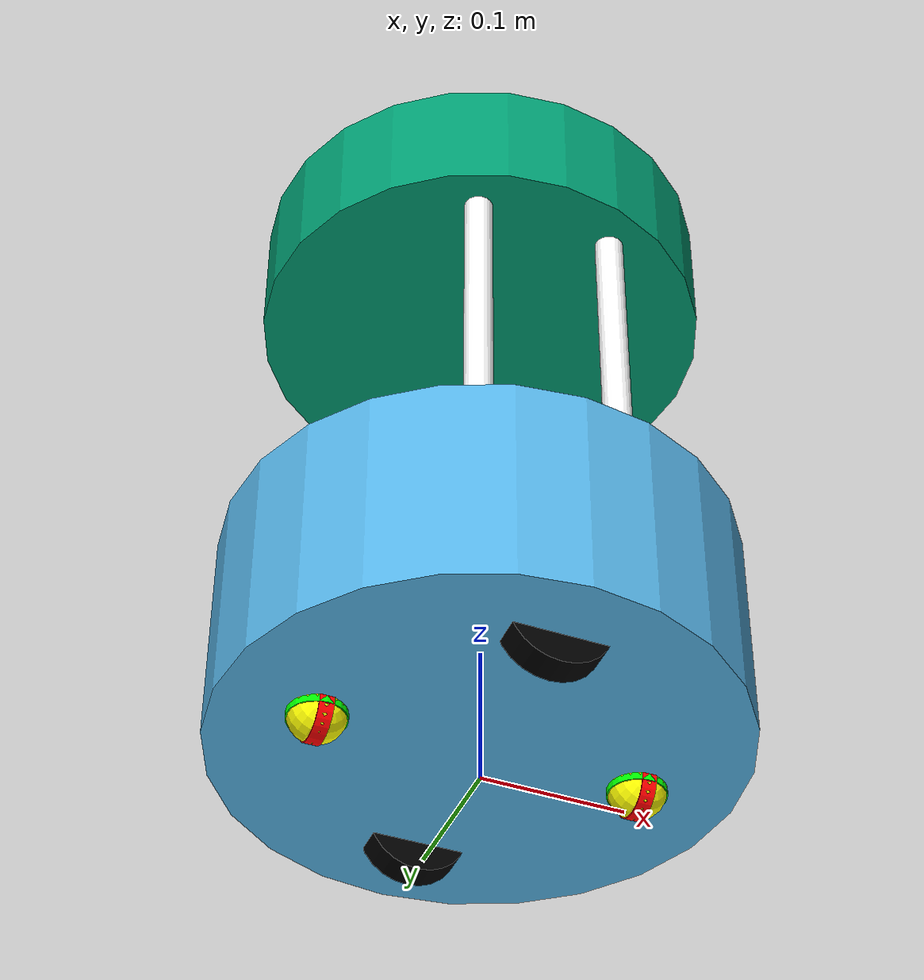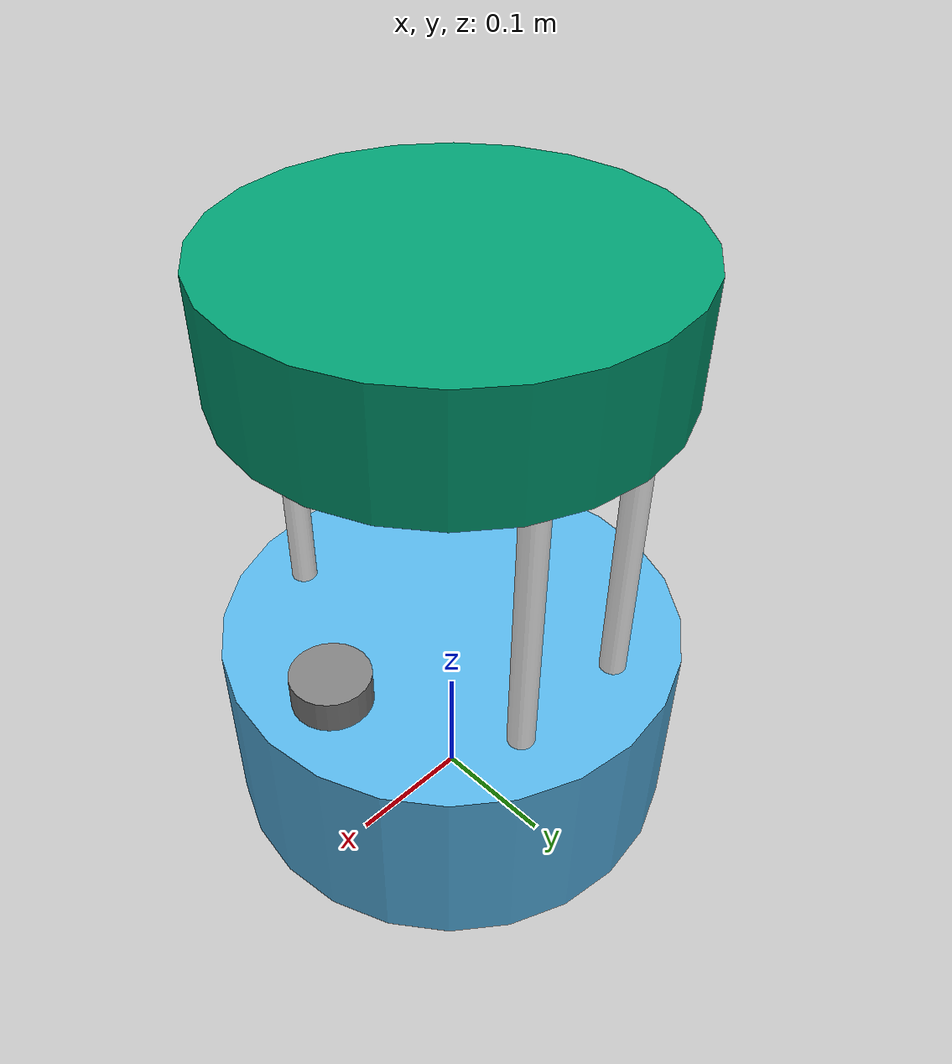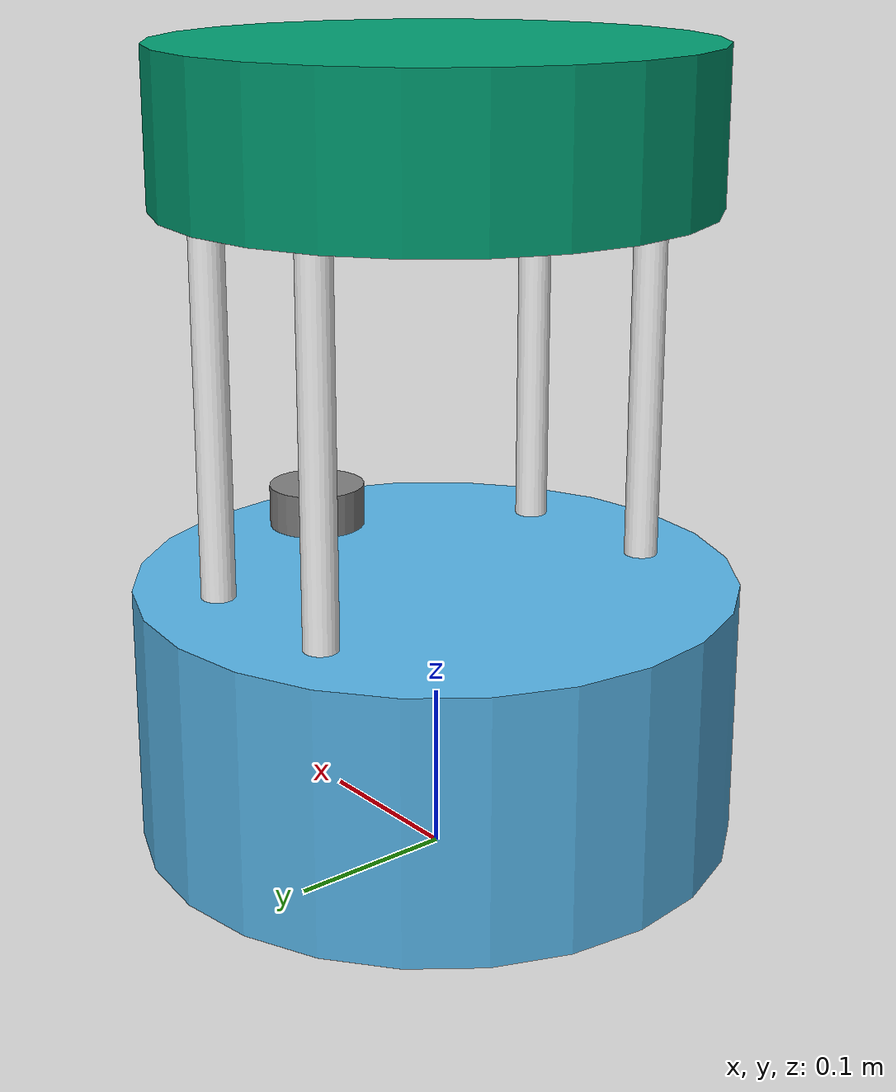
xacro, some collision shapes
<?xml version="1.0"?>
<robot xmlns:xacro="http://www.ros.org/wiki/xacro" name="barista_robot">

  <!-- Argument -->
  <xacro:arg name="robot_name" default=""/>
  <xacro:arg name="color" default=""/>
  <xacro:arg name="include_laser" default="true"/>
  <xacro:arg name="plugin_ns" default=""/>

  <!-- Property -->
  <xacro:property name="include_laser" value="$(arg include_laser)"/>
  <xacro:property name="robot_name" value="$(arg robot_name)"/>
  <xacro:property name="color" value="$(arg color)"/>

  <!-- Included tags -->
  <xacro:include filename="$(find barista_robot_description)/xacro/cup_holder_tray.xacro"/>
  <xacro:include filename="$(find barista_robot_description)/xacro/standoff.xacro"/>
  <xacro:include filename="$(find barista_robot_description)/xacro/wheel.xacro"/>
  <xacro:include filename="$(find barista_robot_description)/xacro/laser_scanner.xacro"/>

  <!-- Global Material Definitions -->
  <material name="Red">
    <color rgba="1.0 0.0 0.0 1.0"/>
  </material>

  <material name="Blue">
    <color rgba="0.0 0.0 1.0 1.0"/>
  </material>

  <material name="Black">
    <color rgba="0.0 0.0 0.0 1.0"/>
  </material>

  <material name="Green">
    <color rgba="0.0 1.0 0.0 1.0"/>
  </material>

  <material name="LightNavyBlue">
    <color rgba="0.2 0.2 0.7 1.0"/>
  </material>

  <material name="Gray">
    <color rgba="0.5 0.5 0.5 1.0"/>
  </material>

  <material name="White">
    <color rgba="1.0 1.0 1.0 1.0"/>
  </material>

  <material name="Purple">
    <color rgba="0.5 0.0 0.5 1.0"/>
  </material>

  <material name="Yellow">
    <color rgba="1.0 1.0 0.0 1.0"/>
  </material>

  <!-- Properties -->
  <xacro:property name="body_radius" value="0.178"/>
  <xacro:property name="body_length" value="0.155"/>
  <xacro:property name="cup_holder_tray_radius" value="0.16"/>
  <xacro:property name="cup_holder_tray_length" value="0.09"/>
  <xacro:property name="standoff_rods_radius" value="0.01"/>
  <xacro:property name="standoff_rods_length" value="0.22"/>
  <xacro:property name="wheel_radius" value="0.0352"/>
  <xacro:property name="wheel_length" value="0.0206"/>
  <xacro:property name="caster_wheel_radius" value="0.02"/>
  <xacro:property name="caster_wheel_length" value="0.01"/>
  <xacro:property name="cylinder_laser_scan_length" value="0.048"/>
  <xacro:property name="cylinder_laser_scan_radius" value="0.03"/>

  <!-- Define base link -->
  <link name="base_link">
  </link>

  <!-- Robot Body -->
  <!-- Chassis Link -->
  <link name="chassis">
    <visual>
      <geometry>
        <cylinder length="${body_length}" radius="${body_radius}"/>
      </geometry>
      <material name="$(arg color)"/>
    </visual>
    <collision>
      <geometry>
        <cylinder length="${body_length}" radius="${body_radius}"/>
      </geometry>
    </collision>
    <inertial>
      <mass value="0.5"/>
      <origin xyz="0 0 0"/>
      <inertia ixx="0.004961541666666666" ixy="0.0" ixz="0.0" iyy="0.004961541666666666" iyz="0.0" izz="0.007921"/>
    </inertial>
  </link>

  <!-- Joint to Attach to Parent -->
  <joint name="chassis_joint" type="fixed">
    <origin rpy="0 0 0" xyz="0 0 0.0975"/>
    <parent link="base_link"/>
    <child link="chassis"/>
  </joint>

  <gazebo reference="chassis">
    <material>Gazebo/$(arg color)</material>
  </gazebo>

  <!-- Cup Holder Tray -->
  <xacro:cup_holder_tray
    name="cup_holder_tray"
    radius="${cup_holder_tray_radius}"
    length="${cup_holder_tray_length}"
    material="$(arg color)"
    mass="0.2"
    parent_link="chassis"
    xyz="0 0 0.3425"
    rpy="0 0 0"
    joint_type="fixed"
    axis="0 0 0"/>

  <gazebo reference="cup_holder_tray">
    <material>Gazebo/$(arg color)</material>
  </gazebo>

  <!-- Standoff Rods -->
  <xacro:standoff
    name="standoff_rod_1"
    radius="${standoff_rods_radius}"
    length="${standoff_rods_length}"
    material="White"
    mass="0.07"
    parent_link="chassis"
    xyz="0.05 0.12 0.1875"
    rpy="0 0 0"
    joint_type="fixed"
    axis="0 0 0"/>

  <xacro:standoff
    name="standoff_rod_2"
    radius="${standoff_rods_radius}"
    length="${standoff_rods_length}"
    material="White"
    mass="0.07"
    parent_link="chassis"
    xyz="-0.05 0.12 0.1875"
    rpy="0 0 0"
    joint_type="fixed"
    axis="0 0 0"/>

  <xacro:standoff
    name="standoff_rod_3"
    radius="${standoff_rods_radius}"
    length="${standoff_rods_length}"
    material="White"
    mass="0.07"
    parent_link="chassis"
    xyz="0.05 -0.12 0.1875"
    rpy="0 0 0"
    joint_type="fixed"
    axis="0 0 0"/>

  <xacro:standoff
    name="standoff_rod_4"
    radius="${standoff_rods_radius}"
    length="${standoff_rods_length}"
    material="White"
    mass="0.07"
    parent_link="chassis"
    xyz="-0.05 -0.12 0.1875"
    rpy="0 0 0"
    joint_type="fixed"
    axis="0 0 0"/>

  <gazebo reference="standoff_rod_1">
    <material>Gazebo/White</material>
  </gazebo>

  <gazebo reference="standoff_rod_2">
    <material>Gazebo/White</material>
  </gazebo>

  <gazebo reference="standoff_rod_3">
    <material>Gazebo/White</material>
  </gazebo>

  <gazebo reference="standoff_rod_4">
    <material>Gazebo/White</material>
  </gazebo>

  <!-- Wheels -->
  <xacro:wheel
    name="wheel_right"
    radius="${wheel_radius}"
    length="${wheel_length}"
    material="Black"
    mass="0.1"
    parent_link="chassis"
    xyz="0 -0.12 -0.0630"
    rpy="0 1.5708 1.5708"
    joint_type="continuous"
    axis="0 0 1"/>

  <xacro:wheel
    name="wheel_left"
    radius="${wheel_radius}"
    length="${wheel_length}"
    material="Black"
    mass="0.1"
    parent_link="chassis"
    xyz="0 0.12 -0.0630"
    rpy="0 1.5708 1.5708"
    joint_type="continuous"
    axis="0 0 1"/>

  <!-- Gazebo configuration for Wheels -->
  <gazebo reference="wheel_right">
    <kp>1000000000.0</kp>
    <kd>1000000000.0</kd>
    <mu1>0.8</mu1>
    <mu2>0.8</mu2>
    <material>Gazebo/Black</material>
  </gazebo>

  <gazebo reference="wheel_left">
    <kp>1000000000.0</kp>
    <kd>1000000000.0</kd>
    <mu1>0.8</mu1>
    <mu2>0.8</mu2>
    <material>Gazebo/Black</material>
  </gazebo>
  <!-- Caster Wheel Link (Yaw) -->
  <link name="front_caster_wheel_yaw_link">
    <visual>
      <origin rpy="0 1.5707 1.5707" xyz="0 0 0"/>
      <geometry>
        <cylinder length="0.01" radius="0.02"/>
      </geometry>
      <material name="Red"/>
    </visual>
    <collision>
      <origin rpy="0 1.5707 1.5707" xyz="0 0 0"/>
      <geometry>
        <cylinder length="0.01" radius="0.02"/>
      </geometry>
    </collision>
    <inertial>
      <origin rpy="0 1.5707 1.5707" xyz="0 0 0"/>
      <mass value="0.07"/>
      <inertia ixx="7.583333333333334e-06" ixy="0.0" ixz="0.0" iyy="7.583333333333334e-06" iyz="0.0" izz="1.4000000000000001e-05"/>
    </inertial>
  </link>
  <!-- Yaw Joint -->
  <joint name="front_caster_wheel_yaw_joint" type="continuous">
    <origin rpy="0 1.5707 1.5707" xyz="0.11 0 -0.0775"/>
    <parent link="chassis"/>
    <child link="front_caster_wheel_yaw_link"/>
    <axis xyz="0 0 1"/>
    <limit effort="1000.0" velocity="100.0"/>
    <dynamics damping="0.0" friction="0.1"/>
  </joint>
  <!-- Caster Wheel (Roll) -->
  <link name="front_caster_wheel_roll_link">
    <visual>
      <origin rpy="0 1.5707 1.5707" xyz="0 0 0"/>
      <geometry>
        <cylinder length="0.01" radius="0.02"/>
      </geometry>
      <material name="Green"/>
    </visual>
    <collision>
      <origin rpy="0 1.5707 1.5707" xyz="0 0 0"/>
      <geometry>
        <cylinder length="0.01" radius="0.02"/>
      </geometry>
    </collision>
    <inertial>
      <origin rpy="0 1.5707 1.5707" xyz="0 0 0"/>
      <mass value="0.07"/>
      <inertia ixx="7.583333333333334e-06" ixy="0.0" ixz="0.0" iyy="7.583333333333334e-06" iyz="0.0" izz="1.4000000000000001e-05"/>
    </inertial>
  </link>
  <!-- Roll Joint -->
  <joint name="front_caster_wheel_roll_joint" type="continuous">
    <origin rpy="0 1.5707 1.5707" xyz="0 0 0"/>
    <parent link="front_caster_wheel_yaw_link"/>
    <child link="front_caster_wheel_roll_link"/>
    <axis xyz="1 0 0"/>
    <limit effort="1000.0" velocity="100.0"/>
    <dynamics damping="0.0" friction="0.1"/>
  </joint>
  <!-- Caster Wheel (Pitch) -->
  <link name="front_caster_wheel_pitch_link">
    <visual>
      <origin rpy="0 1.5707 1.5707" xyz="0 0 0"/>
      <geometry>
        <sphere radius="0.02"/>
      </geometry>
      <material name="Yellow"/>
    </visual>
    <collision>
      <origin rpy="0 1.5707 1.5707" xyz="0 0 0"/>
      <geometry>
        <sphere radius="0.02"/>
      </geometry>
    </collision>
    <inertial>
      <origin rpy="0 1.5707 1.5707" xyz="0 0 0"/>
      <mass value="0.07"/>
      <inertia ixx="1.1200000000000003e-05" ixy="0.0" ixz="0.0" iyy="1.1200000000000003e-05" iyz="0.0" izz="1.1200000000000003e-05"/>
    </inertial>
  </link>
  <!-- Pitch Joint -->
  <joint name="front_caster_wheel_pitch_joint" type="continuous">
    <origin rpy="0 1.5707 1.5707" xyz="0 0 0"/>
    <parent link="front_caster_wheel_roll_link"/>
    <child link="front_caster_wheel_pitch_link"/>
    <axis xyz="0 1 0"/>
    <limit effort="1000.0" velocity="100.0"/>
    <dynamics damping="0.0" friction="0.1"/>
  </joint>
  <!-- Caster Wheel Link (Yaw) -->
  <link name="back_caster_wheel_yaw_link">
    <visual>
      <origin rpy="0 1.5707 1.5707" xyz="0 0 0"/>
      <geometry>
        <cylinder length="0.01" radius="0.02"/>
      </geometry>
      <material name="Red"/>
    </visual>
    <collision>
      <origin rpy="0 1.5707 1.5707" xyz="0 0 0"/>
      <geometry>
        <cylinder length="0.01" radius="0.02"/>
      </geometry>
    </collision>
    <inertial>
      <origin rpy="0 1.5707 1.5707" xyz="0 0 0"/>
      <mass value="0.07"/>
      <inertia ixx="7.583333333333334e-06" ixy="0.0" ixz="0.0" iyy="7.583333333333334e-06" iyz="0.0" izz="1.4000000000000001e-05"/>
    </inertial>
  </link>
  <!-- Yaw Joint -->
  <joint name="back_caster_wheel_yaw_joint" type="continuous">
    <origin rpy="0 1.5707 1.5707" xyz="-0.11 0 -0.0775"/>
    <parent link="chassis"/>
    <child link="back_caster_wheel_yaw_link"/>
    <axis xyz="0 0 1"/>
    <limit effort="1000.0" velocity="100.0"/>
    <dynamics damping="0.0" friction="0.1"/>
  </joint>
  <!-- Caster Wheel (Roll) -->
  <link name="back_caster_wheel_roll_link">
    <visual>
      <origin rpy="0 1.5707 1.5707" xyz="0 0 0"/>
      <geometry>
        <cylinder length="0.01" radius="0.02"/>
      </geometry>
      <material name="Green"/>
    </visual>
    <collision>
      <origin rpy="0 1.5707 1.5707" xyz="0 0 0"/>
      <geometry>
        <cylinder length="0.01" radius="0.02"/>
      </geometry>
    </collision>
    <inertial>
      <origin rpy="0 1.5707 1.5707" xyz="0 0 0"/>
      <mass value="0.07"/>
      <inertia ixx="7.583333333333334e-06" ixy="0.0" ixz="0.0" iyy="7.583333333333334e-06" iyz="0.0" izz="1.4000000000000001e-05"/>
    </inertial>
  </link>
  <!-- Roll Joint -->
  <joint name="back_caster_wheel_roll_joint" type="continuous">
    <origin rpy="0 1.5707 1.5707" xyz="0 0 0"/>
    <parent link="back_caster_wheel_yaw_link"/>
    <child link="back_caster_wheel_roll_link"/>
    <axis xyz="1 0 0"/>
    <limit effort="1000.0" velocity="100.0"/>
    <dynamics damping="0.0" friction="0.1"/>
  </joint>
  <!-- Caster Wheel (Pitch) -->
  <link name="back_caster_wheel_pitch_link">
    <visual>
      <origin rpy="0 1.5707 1.5707" xyz="0 0 0"/>
      <geometry>
        <sphere radius="0.02"/>
      </geometry>
      <material name="Yellow"/>
    </visual>
    <collision>
      <origin rpy="0 1.5707 1.5707" xyz="0 0 0"/>
      <geometry>
        <sphere radius="0.02"/>
      </geometry>
    </collision>
    <inertial>
      <origin rpy="0 1.5707 1.5707" xyz="0 0 0"/>
      <mass value="0.07"/>
      <inertia ixx="1.1200000000000003e-05" ixy="0.0" ixz="0.0" iyy="1.1200000000000003e-05" iyz="0.0" izz="1.1200000000000003e-05"/>
    </inertial>
  </link>

  <!-- Pitch Joint -->
  <joint name="back_caster_wheel_pitch_joint" type="continuous">
    <origin rpy="0 1.5707 1.5707" xyz="0 0 0"/>
    <parent link="back_caster_wheel_roll_link"/>
    <child link="back_caster_wheel_pitch_link"/>
    <axis xyz="0 1 0"/>
    <limit effort="1000.0" velocity="100.0"/>
    <dynamics damping="0.0" friction="0.1"/>
  </joint>

  <!-- Gazebo configuration for Caster Wheels -->
  <gazebo reference="front_caster_wheel_yaw_link">
    <material>Gazebo/Red</material>
  </gazebo>
  <gazebo reference="back_caster_wheel_yaw_link">
    <material>Gazebo/Red</material>
  </gazebo>
  <gazebo reference="front_caster_wheel_roll_link">
    <material>Gazebo/Green</material>
  </gazebo>
  <gazebo reference="back_caster_wheel_roll_link">
    <material>Gazebo/Green</material>
  </gazebo>

  <gazebo reference="front_caster_wheel_pitch_link">
    <kp>10000000000.0</kp>
    <kd>10000000000.0</kd>
    <mu1>0.5</mu1>
    <mu2>0.5</mu2>
    <material>Gazebo/Yellow</material>
  </gazebo>
  <gazebo reference="back_caster_wheel_pitch_link">
    <kp>1000000000.0</kp>
    <kd>1000000000.0</kd>
    <mu1>0.5</mu1>
    <mu2>0.5</mu2>
    <material>Gazebo/Yellow</material>
  </gazebo>

  <!-- Plugin -->
  <!-- Joint State Publisher -->
  <gazebo>
    <plugin name="barista_robot_joint_state" filename="libgazebo_ros_joint_state_publisher.so">
      <ros>
        <remapping>~/out:=joint_state</remapping>
      </ros>
      <update_rate>30</update_rate>
      <joint_name>wheel_left_joint</joint_name>
      <joint_name>wheel_right_joint</joint_name>
      <joint_name>front_caster_wheel_yaw_joint</joint_name>
      <joint_name>back_caster_wheel_yaw_joint</joint_name>
      <joint_name>front_caster_wheel_roll_joint</joint_name>
      <joint_name>back_caster_wheel_roll_joint</joint_name>
      <joint_name>front_caster_wheel_pitch_joint</joint_name>
      <joint_name>back_caster_wheel_pitch_joint</joint_name>
    </plugin>
  </gazebo>
  <!-- Differential Drive Plugin -->
  <gazebo>
    <plugin name="differential_drive_controller" filename="libgazebo_ros_diff_drive.so">
      <ros>
        <remapping>/out:=cmd_vel</remapping>
        <namespace>$(arg plugin_ns)</namespace>
      </ros>

      <!-- Wheels -->
      <left_joint>wheel_left_joint</left_joint>
      <right_joint>wheel_right_joint</right_joint>
      <!-- Kinematics -->
      <wheel_separation>0.24</wheel_separation>
      <wheel_diameter>0.0704</wheel_diameter>
      <!-- Limits -->
      <max_wheel_torque>0.5</max_wheel_torque>
      <max_wheel_acceleration>2.0</max_wheel_acceleration>
      <!-- Output -->
      <publish_odom>true</publish_odom>
      <publish_odom_tf>true</publish_odom_tf>
      <odometry_frame>$(arg robot_name)/odom</odometry_frame>
      <robot_base_frame>$(arg robot_name)/base_link</robot_base_frame>
    </plugin>
  </gazebo>

  <xacro:if value="${include_laser}">
    <xacro:laser_scanner
      name="lidar"
      color="Gray"
      length="${cylinder_laser_scan_length}"
      radius="${cylinder_laser_scan_radius}"
      mass="0.05"
      parent_link="chassis"
      xyz="0.12 0 0.08"
      rpy="0 0 0"
      joint_type="fixed"
      axis="0 0 0"/>
  </xacro:if>

  <!-- Gazebo Configuration for Laser -->
  <xacro:if value= "${include_laser}">
    <gazebo reference="lidar">
      <material>Gazebo/Gray</material>
    </gazebo>
  </xacro:if>

</robot>

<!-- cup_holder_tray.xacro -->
<robot xmlns:xacro="http://www.ros.org/wiki/xacro">
  <!-- Macro for a Cup Holder Tray Component -->
  <xacro:macro name="cup_holder_tray" params="name radius length material mass parent_link xyz rpy joint_type axis">
    <!-- Cylindrical Link -->
    <link name="${name}">
      <visual>
        <geometry>
          <cylinder radius="${radius}" length="${length}"/>
        </geometry>
        <material name="${material}"/>
      </visual>
      <collision>
        <geometry>
          <cylinder radius="${radius}" length="${length}"/>
        </geometry>
      </collision>
      <inertial>
        <mass value="${mass}"/>
        <origin xyz="0 0 0" />
        <inertia
          ixx="${(1.0/12.0) * mass * (3.0 * (radius * radius) + (length * length))}"
          ixy="0.0"
          ixz="0.0"
          iyy="${(1.0/12.0) * mass * (3.0 * (radius * radius) + (length * length))}"
          iyz="0.0"
          izz="${(1.0/2.0) * mass * (radius * radius)}"/>
      </inertial>
    </link>
    <!-- Joint to Attach to Parent -->
    <joint name="${name}_joint" type="${joint_type}">
      <origin xyz="${xyz}" rpy="${rpy}"/>
      <parent link="${parent_link}"/>
      <child link="${name}"/>
      <xacro:if value="${joint_type != 'fixed'}">
        <axis xyz="${axis}"/>
      </xacro:if>
    </joint>
  </xacro:macro>

</robot>

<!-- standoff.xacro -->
<robot xmlns:xacro="http://www.ros.org/wiki/xacro">
  <!-- Macro for a Standoff Rod Component -->
  <xacro:macro name="standoff" params="name radius length material mass parent_link xyz rpy joint_type axis">
    <!-- Cylindrical Link -->
    <link name="${name}">
      <visual>
        <geometry>
          <cylinder radius="${radius}" length="${length}"/>
        </geometry>
        <material name="${material}"/>
      </visual>
      <collision>
        <geometry>
          <cylinder radius="${radius}" length="${length}"/>
        </geometry>
      </collision>
      <inertial>
        <mass value="${mass}"/>
        <origin xyz="0 0 0" />
        <inertia
          ixx="${(1.0/12.0) * mass * (3.0 * (radius * radius) + (length * length))}"
          ixy="0.0"
          ixz="0.0"
          iyy="${(1.0/12.0) * mass * (3.0 * (radius * radius) + (length * length))}"
          iyz="0.0"
          izz="${(1.0/2.0) * mass * (radius * radius)}"/>
      </inertial>
    </link>
    <!-- Joint to Attach to Parent -->
    <joint name="${name}_joint" type="${joint_type}">
      <origin xyz="${xyz}" rpy="${rpy}"/>
      <parent link="${parent_link}"/>
      <child link="${name}"/>
      <xacro:if value="${joint_type != 'fixed'}">
        <axis xyz="${axis}"/>
      </xacro:if>
    </joint>
  </xacro:macro>

</robot>

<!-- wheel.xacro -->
<robot xmlns:xacro="http://www.ros.org/wiki/xacro">

  <!-- Properties -->
  <xacro:property name="joint_effort_limit" value="1000.0"/>
  <xacro:property name="joint_velocity_limit" value="100.0"/>
  <xacro:property name="damping_coefficient" value="0.02"/>
  <xacro:property name="friction_coefficient" value="0.1"/>

  <!-- Macro for a Wheel Component -->
  <xacro:macro name="wheel" params="name radius length material mass parent_link xyz rpy joint_type axis">
    <!-- Cylindrical Link -->
    <link name="${name}">
      <visual>
        <geometry>
          <cylinder radius="${radius}" length="${length}"/>
        </geometry>
        <material name="${material}"/>
      </visual>
      <collision>
        <geometry>
          <cylinder radius="${radius}" length="${length}"/>
        </geometry>
      </collision>
      <inertial>
        <mass value="${mass}"/>
        <origin xyz="0 0 0" />
        <inertia
          ixx="${(1.0/12.0) * mass * (3.0 * (radius * radius) + (length * length))}"
          ixy="0.0"
          ixz="0.0"
          iyy="${(1.0/12.0) * mass * (3.0 * (radius * radius) + (length * length))}"
          iyz="0.0"
          izz="${(1.0/2.0) * mass * (radius * radius)}"/>
      </inertial>
    </link>
    <!-- Joint to Attach to Parent -->
    <joint name="${name}_joint" type="${joint_type}">
      <origin xyz="${xyz}" rpy="${rpy}"/>
      <parent link="${parent_link}"/>
      <child link="${name}"/>
      <axis xyz="${axis}"/>
      <limit effort="${joint_effort_limit}" velocity="${joint_velocity_limit}" />
      <joint_properties damping="${damping_coefficient}" friction="${friction_coefficient}" />
    </joint>
  </xacro:macro>

</robot>

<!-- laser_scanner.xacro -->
<robot xmlns:xacro="http://www.ros.org/wiki/xacro">
  <!-- Macro for a Laser Scanner -->
  <!-- Macro for Sensor LIDAR -->
   <!-- Macro for Sensor LIDAR -->
  <xacro:macro name="laser_scanner" params="name color length radius mass parent_link xyz rpy joint_type axis">
    <link name="${name}">
      <visual>
        <origin rpy="0 0 0" xyz="0 0 0"/>
        <geometry>
          <mesh filename="package://barista_robot_description/meshes/hokuyo_urg_04lx.dae" scale="1.0 1.0 1.0"/>
        </geometry>
        <material name="${color}"/>
      </visual>
      <collision>
        <origin rpy="0 0 0" xyz="0 0 0"/>
        <geometry>
          <cylinder length="${length}" radius="${radius}"/>
        </geometry>
      </collision>
      <inertial>
        <mass value="${mass}"/>
        <origin xyz="0 0 0"/>
        <inertia
          ixx="${(1.0/12.0) * mass * (3.0 * (radius * radius) + (length * length))}"
          ixy="0.0"
          ixz="0.0"
          iyy="${(1.0/12.0) * mass * (3.0 * (radius * radius) + (length * length))}"
          iyz="0.0"
          izz="${(1.0/2.0) * mass * (radius * radius)}"/>
      </inertial>
    </link>

    <joint name="${name}_joint" type="${joint_type}">
      <origin xyz="${xyz}" rpy="${rpy}"/>
      <parent link="${parent_link}"/>
      <child link="${name}"/>
    </joint>

    <!-- Ray frame link -->
    <link name="${name}_ray_link"/>
    <joint name="${name}_ray_joint" type="fixed">
      <origin xyz="0 0 ${length}" rpy="0 0 0"/>
      <parent link="${name}"/>
      <child link="${name}_ray_link"/>
    </joint>

    <!-- Laser Sensor Plugin -->
    <gazebo reference="${name}_ray_link">
      <sensor name="${name}_sensor" type="ray">
        <pose>0 0 0 0 0 0</pose>
        <ray>
          <scan>
            <horizontal>
              <samples>720</samples>
              <resolution>1.0</resolution>
              <min_angle>-3.14</min_angle>
              <max_angle>3.14</max_angle>
            </horizontal>
          </scan>
          <range>
            <min>0.1</min>
            <max>5.0</max>
          </range>
        </ray>
        <visualize>true</visualize>
        <always_on>true</always_on>
        <update_rate>50.0</update_rate>
        <plugin name="${name}_gazebo_plugin" filename="libgazebo_ros_ray_sensor.so">
          <ros>
            <remapping>~/out:=scan</remapping>
          </ros>
          <output_type>sensor_msgs/LaserScan</output_type>
          <frame_name>${name}_ray_link</frame_name>
        </plugin>
      </sensor>
    </gazebo>
  </xacro:macro>
</robot>
